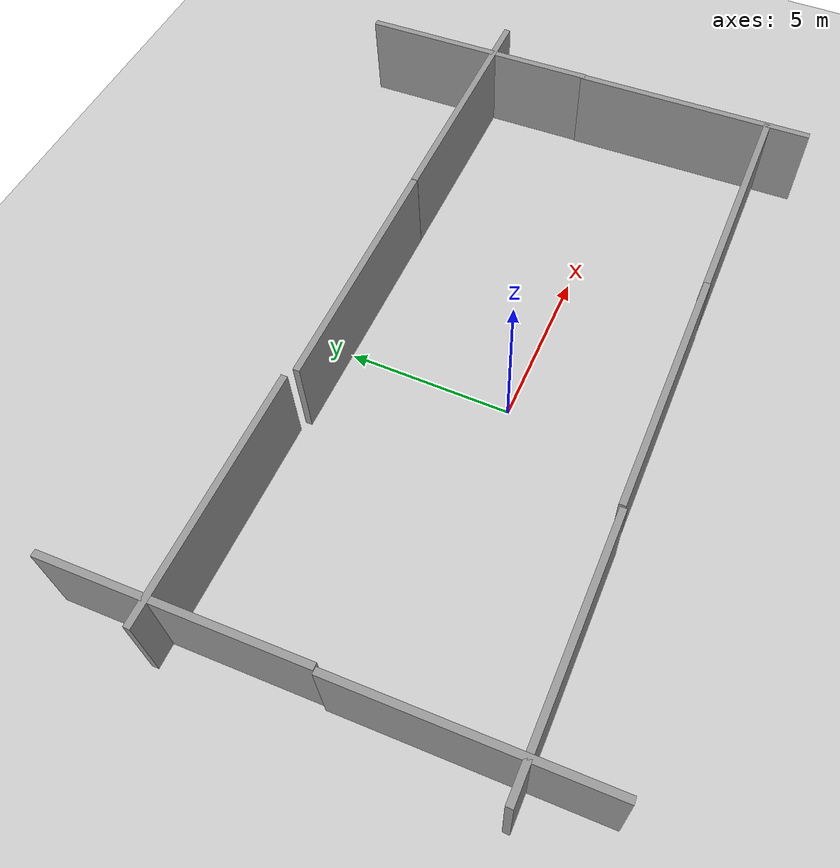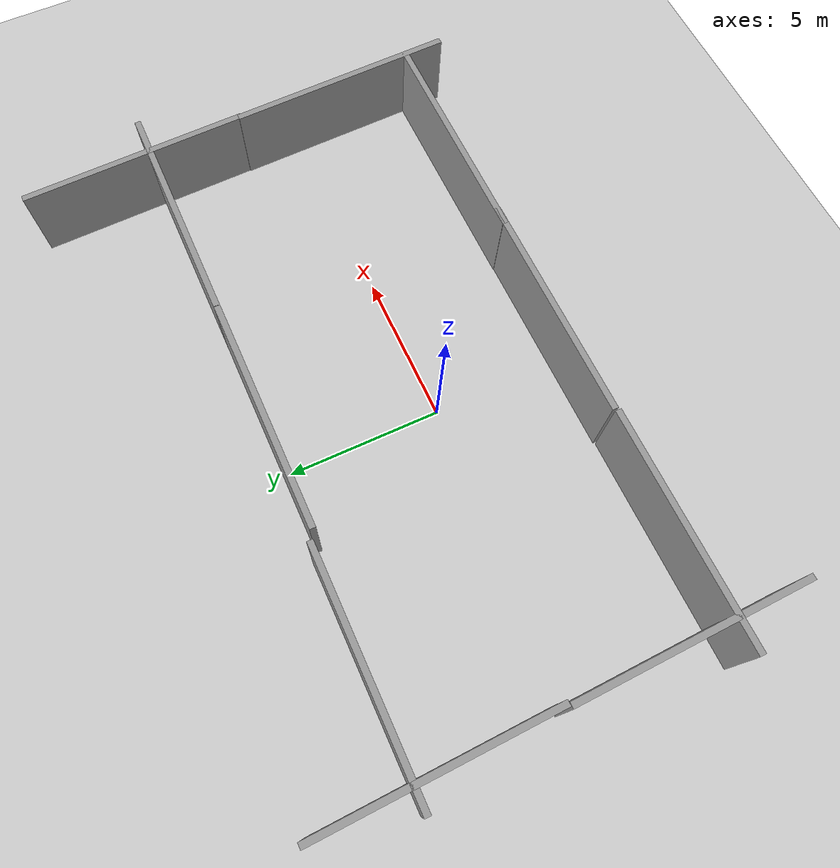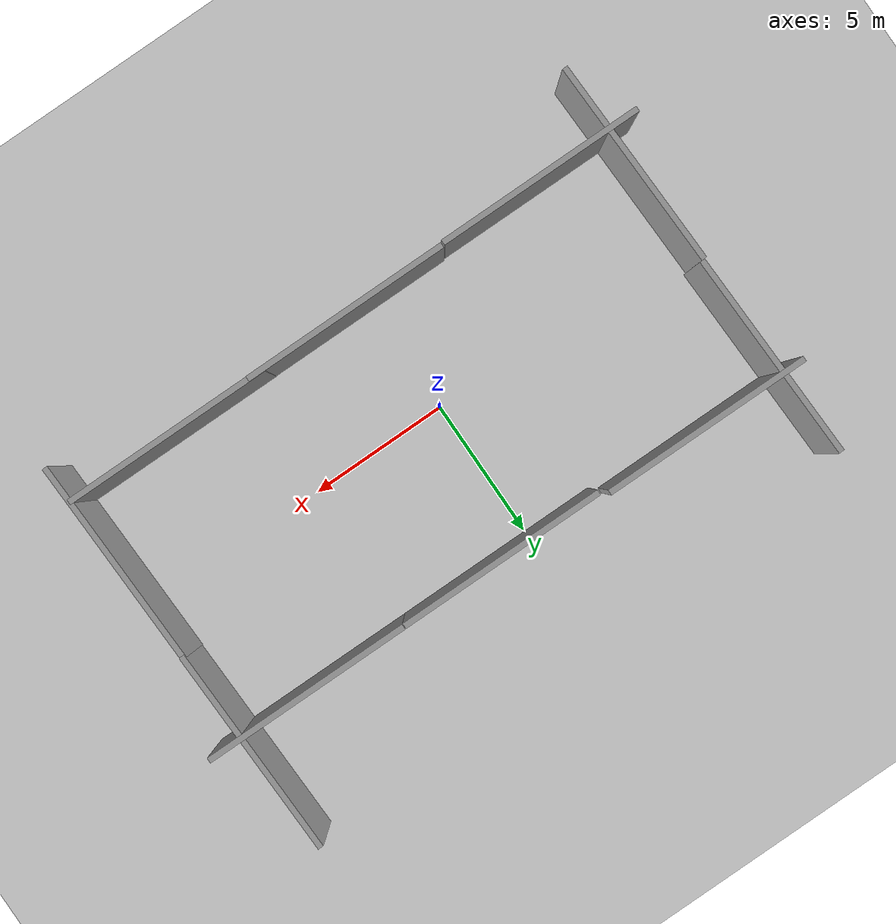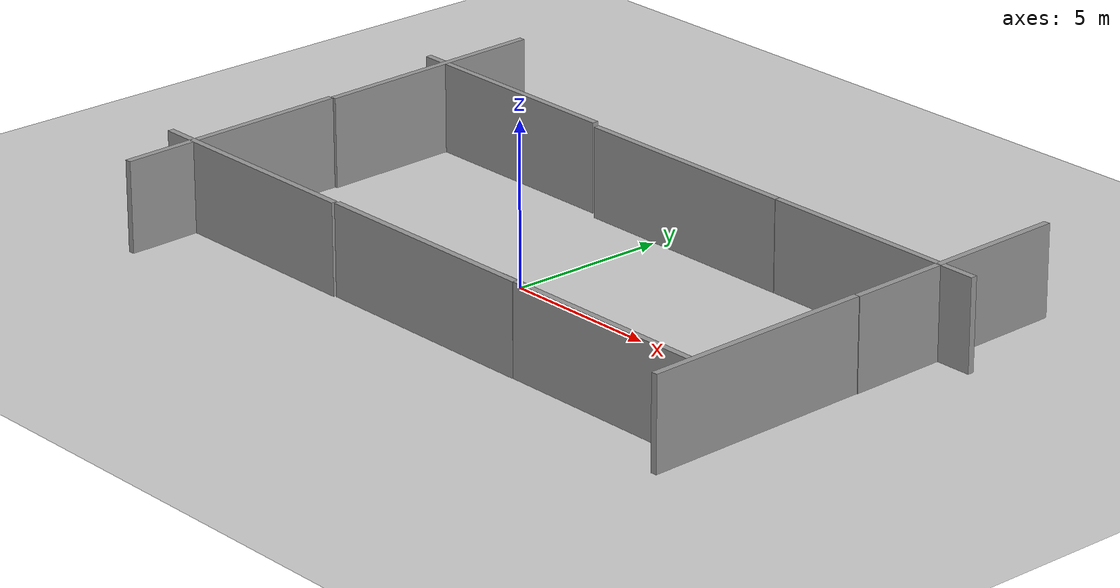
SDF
<sdf version="1.6">
  <world name="default">
    <plugin name="gazebo_ros_state" filename="libgazebo_ros_state.so"/>
    <gui>
      <camera name="default_camera">
        <pose>4.95 -1.95 0.95 0 0.25 2.35</pose>
      </camera>
    </gui>
    <scene>
      <ambient>0.4 0.4 0.4 1</ambient>
      <background>0.7 0.7 0.7 1</background>
      <shadows>true</shadows>
    </scene>

    <!-- A global light source -->
    <include>
      <uri>model://sun</uri>
    </include>

    <!-- A ground plane -->
    <include>
      <uri>model://ground_plane</uri>
    </include>

     <model name='grey_wall'>
      <static>1</static>
      <link name='link'>
        <pose frame=''>0 0 1.4 0 -0 0</pose>
        <collision name='collision'>
          <geometry>
            <box>
              <size>7.5 0.2 2.8</size>
            </box>
          </geometry>
          <max_contacts>10</max_contacts>
          <surface>
            <contact>
              <ode/>
            </contact>
            <bounce/>
            <friction>
              <torsional>
                <ode/>
              </torsional>
              <ode/>
            </friction>
          </surface>
        </collision>
        <visual name='visual'>
          <cast_shadows>0</cast_shadows>
          <geometry>
            <box>
              <size>7.5 0.2 2.8</size>
            </box>
          </geometry>
          <material>
            <script>
	      <uri>model://grey_wall/materials/scripts</uri>
              <uri>model://grey_wall/materials/textures</uri>
              <name>vrc/grey_wall</name>
            </script>
          </material>
        </visual>
        <self_collide>0</self_collide>
        <enable_wind>0</enable_wind>
        <kinematic>0</kinematic>
      </link>
      <pose frame=''>-6.743388  -4.182453 0 0 -0 0</pose>
    </model>
    <model name='grey_wall_clone'>
      <static>1</static>
      <link name='link'>
        <pose frame=''>0 0 1.4 0 -0 0</pose>
        <collision name='collision'>
          <geometry>
            <box>
              <size>7.5 0.2 2.8</size>
            </box>
          </geometry>
          <max_contacts>10</max_contacts>
          <surface>
            <contact>
              <ode/>
            </contact>
            <bounce/>
            <friction>
              <torsional>
                <ode/>
              </torsional>
              <ode/>
            </friction>
          </surface>
        </collision>
        <visual name='visual'>
          <cast_shadows>0</cast_shadows>
          <geometry>
            <box>
              <size>7.5 0.2 2.8</size>
            </box>
          </geometry>
          <material>
            <script>
              <uri>model://grey_wall/materials/scripts</uri>
              <uri>model://grey_wall/materials/textures</uri>
              <name>vrc/grey_wall</name>
            </script>
          </material>
        </visual>
        <self_collide>0</self_collide>
        <enable_wind>0</enable_wind>
        <kinematic>0</kinematic>
      </link>
      <pose frame=''>0.80981 -4.1319 0 0 -0 0</pose>
    </model>
    <model name='grey_wall_clone_0'>
      <static>1</static>
      <link name='link'>
        <pose frame=''>0 0 1.4 0 -0 0</pose>
        <collision name='collision'>
          <geometry>
            <box>
              <size>7.5 0.2 2.8</size>
            </box>
          </geometry>
          <max_contacts>10</max_contacts>
          <surface>
            <contact>
              <ode/>
            </contact>
            <bounce/>
            <friction>
              <torsional>
                <ode/>
              </torsional>
              <ode/>
            </friction>
          </surface>
        </collision>
        <visual name='visual'>
          <cast_shadows>0</cast_shadows>
          <geometry>
            <box>
              <size>7.5 0.2 2.8</size>
            </box>
          </geometry>
          <material>
            <script>
              <uri>model://grey_wall/materials/scripts</uri>
              <uri>model://grey_wall/materials/textures</uri>
              <name>vrc/grey_wall</name>
            </script>
          </material>
        </visual>
        <self_collide>0</self_collide>
        <enable_wind>0</enable_wind>
        <kinematic>0</kinematic>
      </link>
      <pose frame=''>7.69092 -4.11812 0 0 -0 0</pose>
    </model>
    <model name='grey_wall_clone_0_clone'>
      <static>1</static>
      <link name='link'>
        <pose frame=''>0 0 1.4 0 -0 0</pose>
        <collision name='collision'>
          <geometry>
            <box>
              <size>7.5 0.2 2.8</size>
            </box>
          </geometry>
          <max_contacts>10</max_contacts>
          <surface>
            <contact>
              <ode/>
            </contact>
            <bounce/>
            <friction>
              <torsional>
                <ode/>
              </torsional>
              <ode/>
            </friction>
          </surface>
        </collision>
        <visual name='visual'>
          <cast_shadows>0</cast_shadows>
          <geometry>
            <box>
              <size>7.5 0.2 2.8</size>
            </box>
          </geometry>
          <material>
            <script>
              <uri>model://grey_wall/materials/scripts</uri>
              <uri>model://grey_wall/materials/textures</uri>
              <name>vrc/grey_wall</name>
            </script>
          </material>
        </visual>
        <self_collide>0</self_collide>
        <enable_wind>0</enable_wind>
        <kinematic>0</kinematic>
      </link>
      <pose frame=''>-6.617064  5.345676 0 0 -0 0</pose>
    </model>
    <model name='grey_wall_clone_0_clone_0'>
      <static>1</static>
      <link name='link'>
        <pose frame=''>0 0 1.4 0 -0 0</pose>
        <collision name='collision'>
          <geometry>
            <box>
              <size>7.5 0.2 2.8</size>
            </box>
          </geometry>
          <max_contacts>10</max_contacts>
          <surface>
            <contact>
              <ode/>
            </contact>
            <bounce/>
            <friction>
              <torsional>
                <ode/>
              </torsional>
              <ode/>
            </friction>
          </surface>
        </collision>
        <visual name='visual'>
          <cast_shadows>0</cast_shadows>
          <geometry>
            <box>
              <size>7.5 0.2 2.8</size>
            </box>
          </geometry>
          <material>
            <script>
              <uri>model://grey_wall/materials/scripts</uri>
              <uri>model://grey_wall/materials/textures</uri>
              <name>vrc/grey_wall</name>
            </script>
          </material>
        </visual>
        <self_collide>0</self_collide>
        <enable_wind>0</enable_wind>
        <kinematic>0</kinematic>
      </link>
      <pose frame=''>1.15406 5.14426 0 0 -0 0</pose>
    </model>
    <model name='grey_wall_clone_0_clone_1'>
      <static>1</static>
      <link name='link'>
        <pose frame=''>0 0 1.4 0 -0 0</pose>
        <collision name='collision'>
          <geometry>
            <box>
              <size>7.5 0.2 2.8</size>
            </box>
          </geometry>
          <max_contacts>10</max_contacts>
          <surface>
            <contact>
              <ode/>
            </contact>
            <bounce/>
            <friction>
              <torsional>
                <ode/>
              </torsional>
              <ode/>
            </friction>
          </surface>
        </collision>
        <visual name='visual'>
          <cast_shadows>0</cast_shadows>
          <geometry>
            <box>
              <size>7.5 0.2 2.8</size>
            </box>
          </geometry>
          <material>
            <script>
              <uri>model://grey_wall/materials/scripts</uri>
              <uri>model://grey_wall/materials/textures</uri>
              <name>vrc/grey_wall</name>
            </script>
          </material>
        </visual>
        <self_collide>0</self_collide>
        <enable_wind>0</enable_wind>
        <kinematic>0</kinematic>
      </link>
      <pose frame=''>8.67046 5.14696 0 0 -0 0</pose>
    </model>
    <model name='grey_wall_clone_0_clone_2_clone'>
      <static>1</static>
      <link name='link'>
        <pose frame=''>0 0 1.4 0 -0 0</pose>
        <collision name='collision'>
          <geometry>
            <box>
              <size>7.5 0.2 2.8</size>
            </box>
          </geometry>
          <max_contacts>10</max_contacts>
          <surface>
            <contact>
              <ode/>
            </contact>
            <bounce/>
            <friction>
              <torsional>
                <ode/>
              </torsional>
              <ode/>
            </friction>
          </surface>
        </collision>
        <visual name='visual'>
          <cast_shadows>0</cast_shadows>
          <geometry>
            <box>
              <size>7.5 0.2 2.8</size>
            </box>
          </geometry>
          <material>
            <script>
              <uri>model://grey_wall/materials/scripts</uri>
              <uri>model://grey_wall/materials/textures</uri>
              <name>vrc/grey_wall</name>
            </script>
          </material>
        </visual>
        <self_collide>0</self_collide>
        <enable_wind>0</enable_wind>
        <kinematic>0</kinematic>
      </link>
      <pose frame=''>-9.42909 -2.81832 0 0 -0 1.5992</pose>
    </model>
    <model name='grey_wall_clone_0_clone_2_clone_0'>
      <static>1</static>
      <link name='link'>
        <pose frame=''>0 0 1.4 0 -0 0</pose>
        <collision name='collision'>
          <geometry>
            <box>
              <size>7.5 0.2 2.8</size>
            </box>
          </geometry>
          <max_contacts>10</max_contacts>
          <surface>
            <contact>
              <ode/>
            </contact>
            <bounce/>
            <friction>
              <torsional>
                <ode/>
              </torsional>
              <ode/>
            </friction>
          </surface>
        </collision>
        <visual name='visual'>
          <cast_shadows>0</cast_shadows>
          <geometry>
            <box>
              <size>7.5 0.2 2.8</size>
            </box>
          </geometry>
          <material>
            <script>
              <uri>model://grey_wall/materials/scripts</uri>
              <uri>model://grey_wall/materials/textures</uri>
              <name>vrc/grey_wall</name>
            </script>
          </material>
        </visual>
        <self_collide>0</self_collide>
        <enable_wind>0</enable_wind>
        <kinematic>0</kinematic>
      </link>
      <pose frame=''>11.1598 5.6841 0 0 -0 1.5992</pose>
    </model>
    <model name='grey_wall_clone_0_clone_2_clone_1'>
      <static>1</static>
      <link name='link'>
        <pose frame=''>0 0 1.4 0 -0 0</pose>
        <collision name='collision'>
          <geometry>
            <box>
              <size>7.5 0.2 2.8</size>
            </box>
          </geometry>
          <max_contacts>10</max_contacts>
          <surface>
            <contact>
              <ode/>
            </contact>
            <bounce/>
            <friction>
              <torsional>
                <ode/>
              </torsional>
              <ode/>
            </friction>
          </surface>
        </collision>
        <visual name='visual'>
          <cast_shadows>0</cast_shadows>
          <geometry>
            <box>
              <size>7.5 0.2 2.8</size>
            </box>
          </geometry>
          <material>
            <script>
              <uri>model://grey_wall/materials/scripts</uri>
              <uri>model://grey_wall/materials/textures</uri>
              <name>vrc/grey_wall</name>
            </script>
          </material>
        </visual>
        <self_collide>0</self_collide>
        <enable_wind>0</enable_wind>
        <kinematic>0</kinematic>
      </link>
      <pose frame=''>-9.55682 4.69294 0 0 -0 1.5992</pose>
    </model>

    <model name='grey_wall_clone_0_clone_2_clone4'>
      <static>1</static>
      <link name='link'>
        <pose frame=''>0 0 1.4 0 -0 0</pose>
        <collision name='collision'>
          <geometry>
            <box>
              <size>7.5 0.2 2.8</size>
            </box>
          </geometry>
          <max_contacts>10</max_contacts>
          <surface>
            <contact>
              <ode/>
            </contact>
            <bounce/>
            <friction>
              <torsional>
                <ode/>
              </torsional>
              <ode/>
            </friction>
          </surface>
        </collision>
        <visual name='visual'>
          <cast_shadows>0</cast_shadows>
          <geometry>
            <box>
              <size>7.5 0.2 2.8</size>
            </box>
          </geometry>
          <material>
            <script>
              <uri>model://grey_wall/materials/scripts</uri>
              <uri>model://grey_wall/materials/textures</uri>
              <name>vrc/grey_wall</name>
            </script>
          </material>
        </visual>
        <self_collide>0</self_collide>
        <enable_wind>0</enable_wind>
        <kinematic>0</kinematic>
      </link>
      <pose frame=''>11.346400  -1.702960 0 0 -0 1.5992</pose>
    </model>
    <physics type="ode">
      <real_time_update_rate>1000.0</real_time_update_rate>
      <max_step_size>0.001</max_step_size>
      <real_time_factor>1</real_time_factor>
      <ode>
        <solver>
          <type>quick</type>
          <iters>150</iters>
          <precon_iters>0</precon_iters>
          <sor>1.400000</sor>
          <use_dynamic_moi_rescaling>1</use_dynamic_moi_rescaling>
        </solver>
        <constraints>
          <cfm>0.00001</cfm>
          <erp>0.2</erp>
          <contact_max_correcting_vel>2000.000000</contact_max_correcting_vel>
          <contact_surface_layer>0.01000</contact_surface_layer>
        </constraints>
      </ode>
    </physics>
  </world>
</sdf>
